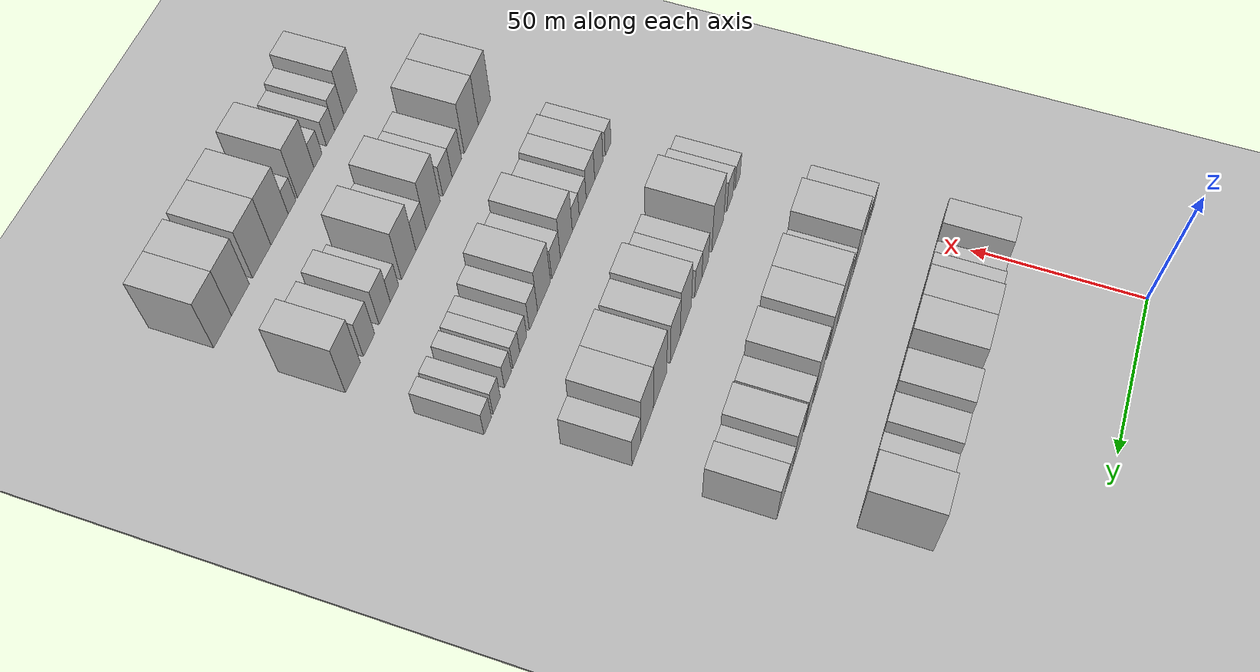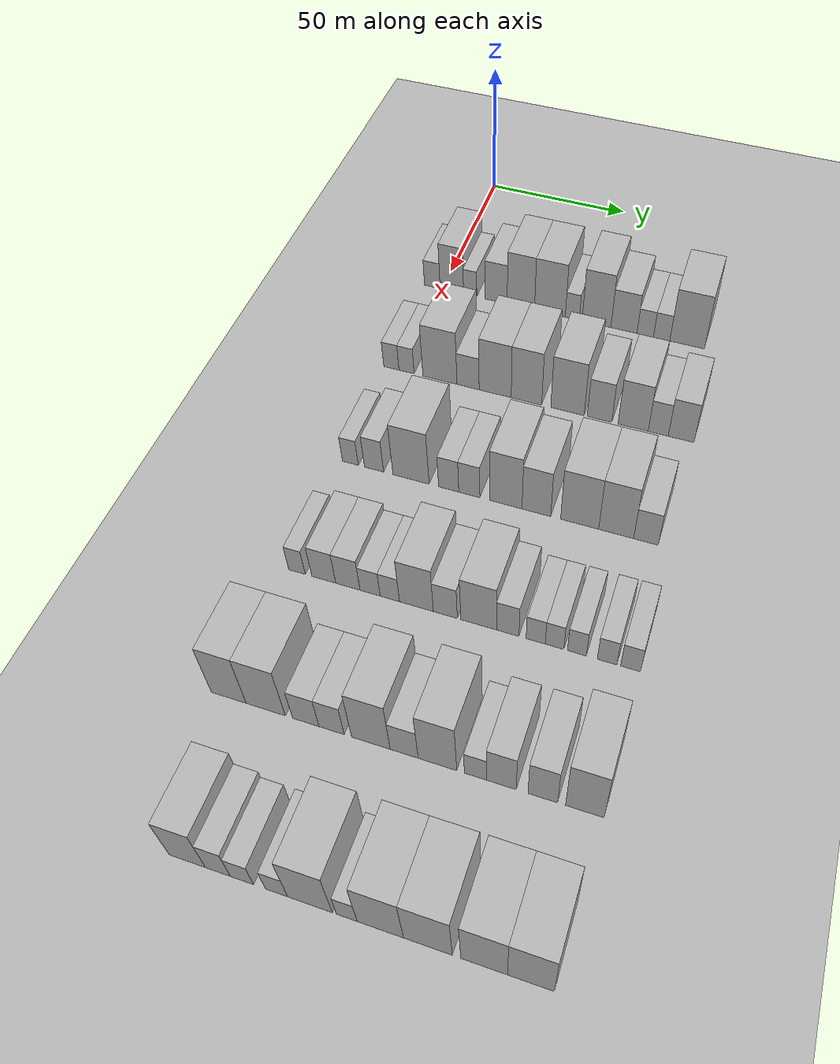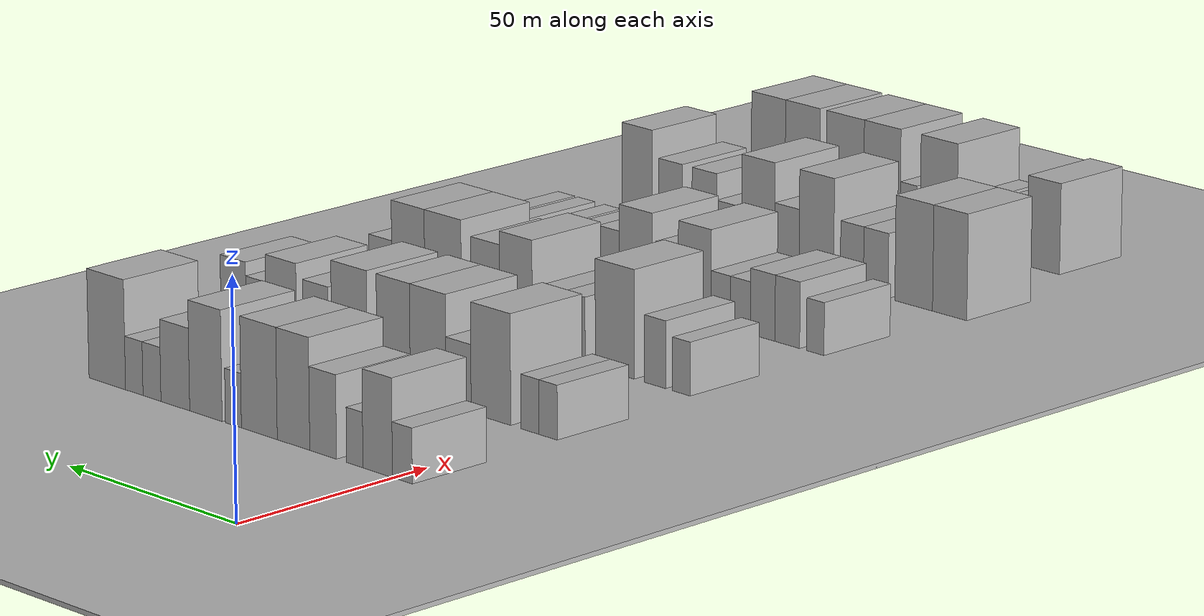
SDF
<sdf version="1.6">
 <world name="default">
  <include><name>ground_plane_1</name><uri>model://HANNAS_ground_plane</uri></include>
  <include>
   <name>ground_plane_2</name>
   <uri>model://HANNAS_ground_plane</uri>
   <pose>100 0 0  0 0 0</pose>
  </include>
  <model name="building_70">
   <static>1</static>
   <pose>50.0000 -3.5770 0 0.000000 0.000000 0.000000</pose>
   <link name="link">
    <pose>0 0 6.00 0 0 0</pose>
    <collision name="collision"><geometry><box><size>20.0000 5.7784 12.0000</size></box></geometry></collision>
    <visual name="visual">
     <cast_shadows>0</cast_shadows>
     <geometry><box><size>20.0000 5.7784 12.0000</size></box></geometry>
     <material>
      <script>
       <uri>model://HANNAS_wall/materials/scripts</uri>
       <uri>model://HANNAS_wall/materials/textures</uri>
       <name>vrc/HANNAS_wall</name>
      </script>
     </material>
    </visual>
   </link>
  </model>
  <model name="building_71">
   <static>1</static>
   <pose>50.0000 3.6200 0 0.000000 0.000000 0.000000</pose>
   <link name="link">
    <pose>0 0 10.50 0 0 0</pose>
    <collision name="collision"><geometry><box><size>20.0000 8.6156 21.0000</size></box></geometry></collision>
    <visual name="visual">
     <cast_shadows>0</cast_shadows>
     <geometry><box><size>20.0000 8.6156 21.0000</size></box></geometry>
     <material>
      <script>
       <uri>model://HANNAS_wall/materials/scripts</uri>
       <uri>model://HANNAS_wall/materials/textures</uri>
       <name>vrc/HANNAS_wall</name>
      </script>
     </material>
    </visual>
   </link>
  </model>
  <model name="building_72">
   <static>1</static>
   <pose>50.0000 10.3360 0 0.000000 0.000000 0.000000</pose>
   <link name="link">
    <pose>0 0 6.00 0 0 0</pose>
    <collision name="collision"><geometry><box><size>20.0000 4.8165 12.0000</size></box></geometry></collision>
    <visual name="visual">
     <cast_shadows>0</cast_shadows>
     <geometry><box><size>20.0000 4.8165 12.0000</size></box></geometry>
     <material>
      <script>
       <uri>model://HANNAS_wall/materials/scripts</uri>
       <uri>model://HANNAS_wall/materials/textures</uri>
       <name>vrc/HANNAS_wall</name>
      </script>
     </material>
    </visual>
   </link>
  </model>
  <model name="building_73">
   <static>1</static>
   <pose>50.0000 19.7261 0 0.000000 0.000000 0.000000</pose>
   <link name="link">
    <pose>0 0 9.00 0 0 0</pose>
    <collision name="collision"><geometry><box><size>20.0000 7.9636 18.0000</size></box></geometry></collision>
    <visual name="visual">
     <cast_shadows>0</cast_shadows>
     <geometry><box><size>20.0000 7.9636 18.0000</size></box></geometry>
     <material>
      <script>
       <uri>model://HANNAS_wall/materials/scripts</uri>
       <uri>model://HANNAS_wall/materials/textures</uri>
       <name>vrc/HANNAS_wall</name>
      </script>
     </material>
    </visual>
   </link>
  </model>
  <model name="building_74">
   <static>1</static>
   <pose>50.0000 28.5896 0 0.000000 0.000000 0.000000</pose>
   <link name="link">
    <pose>0 0 12.00 0 0 0</pose>
    <collision name="collision"><geometry><box><size>20.0000 9.7633 24.0000</size></box></geometry></collision>
    <visual name="visual">
     <cast_shadows>0</cast_shadows>
     <geometry><box><size>20.0000 9.7633 24.0000</size></box></geometry>
     <material>
      <script>
       <uri>model://HANNAS_wall/materials/scripts</uri>
       <uri>model://HANNAS_wall/materials/textures</uri>
       <name>vrc/HANNAS_wall</name>
      </script>
     </material>
    </visual>
   </link>
  </model>
  <model name="building_75">
   <static>1</static>
   <pose>50.0000 38.9172 0 0.000000 0.000000 0.000000</pose>
   <link name="link">
    <pose>0 0 12.00 0 0 0</pose>
    <collision name="collision"><geometry><box><size>20.0000 10.8919 24.0000</size></box></geometry></collision>
    <visual name="visual">
     <cast_shadows>0</cast_shadows>
     <geometry><box><size>20.0000 10.8919 24.0000</size></box></geometry>
     <material>
      <script>
       <uri>model://HANNAS_wall/materials/scripts</uri>
       <uri>model://HANNAS_wall/materials/textures</uri>
       <name>vrc/HANNAS_wall</name>
      </script>
     </material>
    </visual>
   </link>
  </model>
  <model name="building_76">
   <static>1</static>
   <pose>50.0000 46.8128 0 0.000000 0.000000 0.000000</pose>
   <link name="link">
    <pose>0 0 6.00 0 0 0</pose>
    <collision name="collision"><geometry><box><size>20.0000 4.8993 12.0000</size></box></geometry></collision>
    <visual name="visual">
     <cast_shadows>0</cast_shadows>
     <geometry><box><size>20.0000 4.8993 12.0000</size></box></geometry>
     <material>
      <script>
       <uri>model://HANNAS_wall/materials/scripts</uri>
       <uri>model://HANNAS_wall/materials/textures</uri>
       <name>vrc/HANNAS_wall</name>
      </script>
     </material>
    </visual>
   </link>
  </model>
  <model name="building_77">
   <static>1</static>
   <pose>50.0000 55.2715 0 0.000000 0.000000 0.000000</pose>
   <link name="link">
    <pose>0 0 12.00 0 0 0</pose>
    <collision name="collision"><geometry><box><size>20.0000 10.0181 24.0000</size></box></geometry></collision>
    <visual name="visual">
     <cast_shadows>0</cast_shadows>
     <geometry><box><size>20.0000 10.0181 24.0000</size></box></geometry>
     <material>
      <script>
       <uri>model://HANNAS_wall/materials/scripts</uri>
       <uri>model://HANNAS_wall/materials/textures</uri>
       <name>vrc/HANNAS_wall</name>
      </script>
     </material>
    </visual>
   </link>
  </model>
  <model name="building_78">
   <static>1</static>
   <pose>50.0000 64.7624 0 0.000000 0.000000 0.000000</pose>
   <link name="link">
    <pose>0 0 9.00 0 0 0</pose>
    <collision name="collision"><geometry><box><size>20.0000 8.9637 18.0000</size></box></geometry></collision>
    <visual name="visual">
     <cast_shadows>0</cast_shadows>
     <geometry><box><size>20.0000 8.9637 18.0000</size></box></geometry>
     <material>
      <script>
       <uri>model://HANNAS_wall/materials/scripts</uri>
       <uri>model://HANNAS_wall/materials/textures</uri>
       <name>vrc/HANNAS_wall</name>
      </script>
     </material>
    </visual>
   </link>
  </model>
  <model name="building_79">
   <static>1</static>
   <pose>50.0000 72.0623 0 0.000000 0.000000 0.000000</pose>
   <link name="link">
    <pose>0 0 6.00 0 0 0</pose>
    <collision name="collision"><geometry><box><size>20.0000 5.6362 12.0000</size></box></geometry></collision>
    <visual name="visual">
     <cast_shadows>0</cast_shadows>
     <geometry><box><size>20.0000 5.6362 12.0000</size></box></geometry>
     <material>
      <script>
       <uri>model://HANNAS_wall/materials/scripts</uri>
       <uri>model://HANNAS_wall/materials/textures</uri>
       <name>vrc/HANNAS_wall</name>
      </script>
     </material>
    </visual>
   </link>
  </model>
  <model name="building_80">
   <static>1</static>
   <pose>50.0000 77.6364 0 0.000000 0.000000 0.000000</pose>
   <link name="link">
    <pose>0 0 6.00 0 0 0</pose>
    <collision name="collision"><geometry><box><size>20.0000 5.5121 12.0000</size></box></geometry></collision>
    <visual name="visual">
     <cast_shadows>0</cast_shadows>
     <geometry><box><size>20.0000 5.5121 12.0000</size></box></geometry>
     <material>
      <script>
       <uri>model://HANNAS_wall/materials/scripts</uri>
       <uri>model://HANNAS_wall/materials/textures</uri>
       <name>vrc/HANNAS_wall</name>
      </script>
     </material>
    </visual>
   </link>
  </model>
  <model name="building_81">
   <static>1</static>
   <pose>50.0000 86.2128 0 0.000000 0.000000 0.000000</pose>
   <link name="link">
    <pose>0 0 12.00 0 0 0</pose>
    <collision name="collision"><geometry><box><size>20.0000 11.6407 24.0000</size></box></geometry></collision>
    <visual name="visual">
     <cast_shadows>0</cast_shadows>
     <geometry><box><size>20.0000 11.6407 24.0000</size></box></geometry>
     <material>
      <script>
       <uri>model://HANNAS_wall/materials/scripts</uri>
       <uri>model://HANNAS_wall/materials/textures</uri>
       <name>vrc/HANNAS_wall</name>
      </script>
     </material>
    </visual>
   </link>
  </model>
  <model name="building_211">
   <static>1</static>
   <pose>90.0000 -3.1458 0 0.000000 0.000000 0.000000</pose>
   <link name="link">
    <pose>0 0 6.00 0 0 0</pose>
    <collision name="collision"><geometry><box><size>20.0000 5.2793 12.0000</size></box></geometry></collision>
    <visual name="visual">
     <cast_shadows>0</cast_shadows>
     <geometry><box><size>20.0000 5.2793 12.0000</size></box></geometry>
     <material>
      <script>
       <uri>model://HANNAS_wall/materials/scripts</uri>
       <uri>model://HANNAS_wall/materials/textures</uri>
       <name>vrc/HANNAS_wall</name>
      </script>
     </material>
    </visual>
   </link>
  </model>
  <model name="building_212">
   <static>1</static>
   <pose>90.0000 2.1346 0 0.000000 0.000000 0.000000</pose>
   <link name="link">
    <pose>0 0 6.00 0 0 0</pose>
    <collision name="collision"><geometry><box><size>20.0000 5.2814 12.0000</size></box></geometry></collision>
    <visual name="visual">
     <cast_shadows>0</cast_shadows>
     <geometry><box><size>20.0000 5.2814 12.0000</size></box></geometry>
     <material>
      <script>
       <uri>model://HANNAS_wall/materials/scripts</uri>
       <uri>model://HANNAS_wall/materials/textures</uri>
       <name>vrc/HANNAS_wall</name>
      </script>
     </material>
    </visual>
   </link>
  </model>
  <model name="building_213">
   <static>1</static>
   <pose>90.0000 13.6112 0 0.000000 0.000000 0.000000</pose>
   <link name="link">
    <pose>0 0 12.00 0 0 0</pose>
    <collision name="collision"><geometry><box><size>20.0000 11.6719 24.0000</size></box></geometry></collision>
    <visual name="visual">
     <cast_shadows>0</cast_shadows>
     <geometry><box><size>20.0000 11.6719 24.0000</size></box></geometry>
     <material>
      <script>
       <uri>model://HANNAS_wall/materials/scripts</uri>
       <uri>model://HANNAS_wall/materials/textures</uri>
       <name>vrc/HANNAS_wall</name>
      </script>
     </material>
    </visual>
   </link>
  </model>
  <model name="building_214">
   <static>1</static>
   <pose>90.0000 23.1948 0 0.000000 0.000000 0.000000</pose>
   <link name="link">
    <pose>0 0 7.50 0 0 0</pose>
    <collision name="collision"><geometry><box><size>20.0000 7.4953 15.0000</size></box></geometry></collision>
    <visual name="visual">
     <cast_shadows>0</cast_shadows>
     <geometry><box><size>20.0000 7.4953 15.0000</size></box></geometry>
     <material>
      <script>
       <uri>model://HANNAS_wall/materials/scripts</uri>
       <uri>model://HANNAS_wall/materials/textures</uri>
       <name>vrc/HANNAS_wall</name>
      </script>
     </material>
    </visual>
   </link>
  </model>
  <model name="building_215">
   <static>1</static>
   <pose>90.0000 32.3058 0 0.000000 0.000000 0.000000</pose>
   <link name="link">
    <pose>0 0 12.00 0 0 0</pose>
    <collision name="collision"><geometry><box><size>20.0000 10.7266 24.0000</size></box></geometry></collision>
    <visual name="visual">
     <cast_shadows>0</cast_shadows>
     <geometry><box><size>20.0000 10.7266 24.0000</size></box></geometry>
     <material>
      <script>
       <uri>model://HANNAS_wall/materials/scripts</uri>
       <uri>model://HANNAS_wall/materials/textures</uri>
       <name>vrc/HANNAS_wall</name>
      </script>
     </material>
    </visual>
   </link>
  </model>
  <model name="building_216">
   <static>1</static>
   <pose>90.0000 42.7172 0 0.000000 0.000000 0.000000</pose>
   <link name="link">
    <pose>0 0 12.00 0 0 0</pose>
    <collision name="collision"><geometry><box><size>20.0000 10.0962 24.0000</size></box></geometry></collision>
    <visual name="visual">
     <cast_shadows>0</cast_shadows>
     <geometry><box><size>20.0000 10.0962 24.0000</size></box></geometry>
     <material>
      <script>
       <uri>model://HANNAS_wall/materials/scripts</uri>
       <uri>model://HANNAS_wall/materials/textures</uri>
       <name>vrc/HANNAS_wall</name>
      </script>
     </material>
    </visual>
   </link>
  </model>
  <model name="building_217">
   <static>1</static>
   <pose>90.0000 56.2069 0 0.000000 0.000000 0.000000</pose>
   <link name="link">
    <pose>0 0 12.00 0 0 0</pose>
    <collision name="collision"><geometry><box><size>20.0000 10.8832 24.0000</size></box></geometry></collision>
    <visual name="visual">
     <cast_shadows>0</cast_shadows>
     <geometry><box><size>20.0000 10.8832 24.0000</size></box></geometry>
     <material>
      <script>
       <uri>model://HANNAS_wall/materials/scripts</uri>
       <uri>model://HANNAS_wall/materials/textures</uri>
       <name>vrc/HANNAS_wall</name>
      </script>
     </material>
    </visual>
   </link>
  </model>
  <model name="building_218">
   <static>1</static>
   <pose>90.0000 66.6106 0 0.000000 0.000000 0.000000</pose>
   <link name="link">
    <pose>0 0 9.00 0 0 0</pose>
    <collision name="collision"><geometry><box><size>20.0000 7.9242 18.0000</size></box></geometry></collision>
    <visual name="visual">
     <cast_shadows>0</cast_shadows>
     <geometry><box><size>20.0000 7.9242 18.0000</size></box></geometry>
     <material>
      <script>
       <uri>model://HANNAS_wall/materials/scripts</uri>
       <uri>model://HANNAS_wall/materials/textures</uri>
       <name>vrc/HANNAS_wall</name>
      </script>
     </material>
    </visual>
   </link>
  </model>
  <model name="building_219">
   <static>1</static>
   <pose>90.0000 77.3674 0 0.000000 0.000000 0.000000</pose>
   <link name="link">
    <pose>0 0 10.50 0 0 0</pose>
    <collision name="collision"><geometry><box><size>20.0000 9.5893 21.0000</size></box></geometry></collision>
    <visual name="visual">
     <cast_shadows>0</cast_shadows>
     <geometry><box><size>20.0000 9.5893 21.0000</size></box></geometry>
     <material>
      <script>
       <uri>model://HANNAS_wall/materials/scripts</uri>
       <uri>model://HANNAS_wall/materials/textures</uri>
       <name>vrc/HANNAS_wall</name>
      </script>
     </material>
    </visual>
   </link>
  </model>
  <model name="building_220">
   <static>1</static>
   <pose>90.0000 85.3149 0 0.000000 0.000000 0.000000</pose>
   <link name="link">
    <pose>0 0 7.50 0 0 0</pose>
    <collision name="collision"><geometry><box><size>20.0000 6.3057 15.0000</size></box></geometry></collision>
    <visual name="visual">
     <cast_shadows>0</cast_shadows>
     <geometry><box><size>20.0000 6.3057 15.0000</size></box></geometry>
     <material>
      <script>
       <uri>model://HANNAS_wall/materials/scripts</uri>
       <uri>model://HANNAS_wall/materials/textures</uri>
       <name>vrc/HANNAS_wall</name>
      </script>
     </material>
    </visual>
   </link>
  </model>
  <model name="building_221">
   <static>1</static>
   <pose>90.0000 92.4992 0 0.000000 0.000000 0.000000</pose>
   <link name="link">
    <pose>0 0 9.00 0 0 0</pose>
    <collision name="collision"><geometry><box><size>20.0000 8.0629 18.0000</size></box></geometry></collision>
    <visual name="visual">
     <cast_shadows>0</cast_shadows>
     <geometry><box><size>20.0000 8.0629 18.0000</size></box></geometry>
     <material>
      <script>
       <uri>model://HANNAS_wall/materials/scripts</uri>
       <uri>model://HANNAS_wall/materials/textures</uri>
       <name>vrc/HANNAS_wall</name>
      </script>
     </material>
    </visual>
   </link>
  </model>
  <model name="building_348">
   <static>1</static>
   <pose>130.0000 -0.7527 0 0.000000 0.000000 0.000000</pose>
   <link name="link">
    <pose>0 0 6.00 0 0 0</pose>
    <collision name="collision"><geometry><box><size>20.0000 5.1723 12.0000</size></box></geometry></collision>
    <visual name="visual">
     <cast_shadows>0</cast_shadows>
     <geometry><box><size>20.0000 5.1723 12.0000</size></box></geometry>
     <material>
      <script>
       <uri>model://HANNAS_wall/materials/scripts</uri>
       <uri>model://HANNAS_wall/materials/textures</uri>
       <name>vrc/HANNAS_wall</name>
      </script>
     </material>
    </visual>
   </link>
  </model>
  <model name="building_349">
   <static>1</static>
   <pose>130.0000 6.9333 0 0.000000 0.000000 0.000000</pose>
   <link name="link">
    <pose>0 0 7.50 0 0 0</pose>
    <collision name="collision"><geometry><box><size>20.0000 6.1996 15.0000</size></box></geometry></collision>
    <visual name="visual">
     <cast_shadows>0</cast_shadows>
     <geometry><box><size>20.0000 6.1996 15.0000</size></box></geometry>
     <material>
      <script>
       <uri>model://HANNAS_wall/materials/scripts</uri>
       <uri>model://HANNAS_wall/materials/textures</uri>
       <name>vrc/HANNAS_wall</name>
      </script>
     </material>
    </visual>
   </link>
  </model>
  <model name="building_350">
   <static>1</static>
   <pose>130.0000 18.8110 0 0.000000 0.000000 0.000000</pose>
   <link name="link">
    <pose>0 0 12.00 0 0 0</pose>
    <collision name="collision"><geometry><box><size>20.0000 11.5559 24.0000</size></box></geometry></collision>
    <visual name="visual">
     <cast_shadows>0</cast_shadows>
     <geometry><box><size>20.0000 11.5559 24.0000</size></box></geometry>
     <material>
      <script>
       <uri>model://HANNAS_wall/materials/scripts</uri>
       <uri>model://HANNAS_wall/materials/textures</uri>
       <name>vrc/HANNAS_wall</name>
      </script>
     </material>
    </visual>
   </link>
  </model>
  <model name="building_351">
   <static>1</static>
   <pose>130.0000 30.7552 0 0.000000 0.000000 0.000000</pose>
   <link name="link">
    <pose>0 0 7.50 0 0 0</pose>
    <collision name="collision"><geometry><box><size>20.0000 6.3324 15.0000</size></box></geometry></collision>
    <visual name="visual">
     <cast_shadows>0</cast_shadows>
     <geometry><box><size>20.0000 6.3324 15.0000</size></box></geometry>
     <material>
      <script>
       <uri>model://HANNAS_wall/materials/scripts</uri>
       <uri>model://HANNAS_wall/materials/textures</uri>
       <name>vrc/HANNAS_wall</name>
      </script>
     </material>
    </visual>
   </link>
  </model>
  <model name="building_352">
   <static>1</static>
   <pose>130.0000 37.2245 0 0.000000 0.000000 0.000000</pose>
   <link name="link">
    <pose>0 0 7.50 0 0 0</pose>
    <collision name="collision"><geometry><box><size>20.0000 6.6062 15.0000</size></box></geometry></collision>
    <visual name="visual">
     <cast_shadows>0</cast_shadows>
     <geometry><box><size>20.0000 6.6062 15.0000</size></box></geometry>
     <material>
      <script>
       <uri>model://HANNAS_wall/materials/scripts</uri>
       <uri>model://HANNAS_wall/materials/textures</uri>
       <name>vrc/HANNAS_wall</name>
      </script>
     </material>
    </visual>
   </link>
  </model>
  <model name="building_353">
   <static>1</static>
   <pose>130.0000 48.5218 0 0.000000 0.000000 0.000000</pose>
   <link name="link">
    <pose>0 0 12.00 0 0 0</pose>
    <collision name="collision"><geometry><box><size>20.0000 9.9884 24.0000</size></box></geometry></collision>
    <visual name="visual">
     <cast_shadows>0</cast_shadows>
     <geometry><box><size>20.0000 9.9884 24.0000</size></box></geometry>
     <material>
      <script>
       <uri>model://HANNAS_wall/materials/scripts</uri>
       <uri>model://HANNAS_wall/materials/textures</uri>
       <name>vrc/HANNAS_wall</name>
      </script>
     </material>
    </visual>
   </link>
  </model>
  <model name="building_354">
   <static>1</static>
   <pose>130.0000 57.8854 0 0.000000 0.000000 0.000000</pose>
   <link name="link">
    <pose>0 0 10.50 0 0 0</pose>
    <collision name="collision"><geometry><box><size>20.0000 8.7388 21.0000</size></box></geometry></collision>
    <visual name="visual">
     <cast_shadows>0</cast_shadows>
     <geometry><box><size>20.0000 8.7388 21.0000</size></box></geometry>
     <material>
      <script>
       <uri>model://HANNAS_wall/materials/scripts</uri>
       <uri>model://HANNAS_wall/materials/textures</uri>
       <name>vrc/HANNAS_wall</name>
      </script>
     </material>
    </visual>
   </link>
  </model>
  <model name="building_355">
   <static>1</static>
   <pose>130.0000 70.9532 0 0.000000 0.000000 0.000000</pose>
   <link name="link">
    <pose>0 0 12.00 0 0 0</pose>
    <collision name="collision"><geometry><box><size>20.0000 11.3968 24.0000</size></box></geometry></collision>
    <visual name="visual">
     <cast_shadows>0</cast_shadows>
     <geometry><box><size>20.0000 11.3968 24.0000</size></box></geometry>
     <material>
      <script>
       <uri>model://HANNAS_wall/materials/scripts</uri>
       <uri>model://HANNAS_wall/materials/textures</uri>
       <name>vrc/HANNAS_wall</name>
      </script>
     </material>
    </visual>
   </link>
  </model>
  <model name="building_356">
   <static>1</static>
   <pose>130.0000 81.8253 0 0.000000 0.000000 0.000000</pose>
   <link name="link">
    <pose>0 0 12.00 0 0 0</pose>
    <collision name="collision"><geometry><box><size>20.0000 10.3476 24.0000</size></box></geometry></collision>
    <visual name="visual">
     <cast_shadows>0</cast_shadows>
     <geometry><box><size>20.0000 10.3476 24.0000</size></box></geometry>
     <material>
      <script>
       <uri>model://HANNAS_wall/materials/scripts</uri>
       <uri>model://HANNAS_wall/materials/textures</uri>
       <name>vrc/HANNAS_wall</name>
      </script>
     </material>
    </visual>
   </link>
  </model>
  <model name="building_357">
   <static>1</static>
   <pose>130.0000 90.5860 0 0.000000 0.000000 0.000000</pose>
   <link name="link">
    <pose>0 0 7.50 0 0 0</pose>
    <collision name="collision"><geometry><box><size>20.0000 7.1738 15.0000</size></box></geometry></collision>
    <visual name="visual">
     <cast_shadows>0</cast_shadows>
     <geometry><box><size>20.0000 7.1738 15.0000</size></box></geometry>
     <material>
      <script>
       <uri>model://HANNAS_wall/materials/scripts</uri>
       <uri>model://HANNAS_wall/materials/textures</uri>
       <name>vrc/HANNAS_wall</name>
      </script>
     </material>
    </visual>
   </link>
  </model>
  <model name="building_476">
   <static>1</static>
   <pose>170.0000 -0.1329 0 0.000000 0.000000 0.000000</pose>
   <link name="link">
    <pose>0 0 6.00 0 0 0</pose>
    <collision name="collision"><geometry><box><size>20.0000 5.0625 12.0000</size></box></geometry></collision>
    <visual name="visual">
     <cast_shadows>0</cast_shadows>
     <geometry><box><size>20.0000 5.0625 12.0000</size></box></geometry>
     <material>
      <script>
       <uri>model://HANNAS_wall/materials/scripts</uri>
       <uri>model://HANNAS_wall/materials/textures</uri>
       <name>vrc/HANNAS_wall</name>
      </script>
     </material>
    </visual>
   </link>
  </model>
  <model name="building_477">
   <static>1</static>
   <pose>170.0000 8.0151 0 0.000000 0.000000 0.000000</pose>
   <link name="link">
    <pose>0 0 7.50 0 0 0</pose>
    <collision name="collision"><geometry><box><size>20.0000 7.2336 15.0000</size></box></geometry></collision>
    <visual name="visual">
     <cast_shadows>0</cast_shadows>
     <geometry><box><size>20.0000 7.2336 15.0000</size></box></geometry>
     <material>
      <script>
       <uri>model://HANNAS_wall/materials/scripts</uri>
       <uri>model://HANNAS_wall/materials/textures</uri>
       <name>vrc/HANNAS_wall</name>
      </script>
     </material>
    </visual>
   </link>
  </model>
  <model name="building_478">
   <static>1</static>
   <pose>170.0000 15.2782 0 0.000000 0.000000 0.000000</pose>
   <link name="link">
    <pose>0 0 7.50 0 0 0</pose>
    <collision name="collision"><geometry><box><size>20.0000 7.2926 15.0000</size></box></geometry></collision>
    <visual name="visual">
     <cast_shadows>0</cast_shadows>
     <geometry><box><size>20.0000 7.2926 15.0000</size></box></geometry>
     <material>
      <script>
       <uri>model://HANNAS_wall/materials/scripts</uri>
       <uri>model://HANNAS_wall/materials/textures</uri>
       <name>vrc/HANNAS_wall</name>
      </script>
     </material>
    </visual>
   </link>
  </model>
  <model name="building_479">
   <static>1</static>
   <pose>170.0000 21.9084 0 0.000000 0.000000 0.000000</pose>
   <link name="link">
    <pose>0 0 6.00 0 0 0</pose>
    <collision name="collision"><geometry><box><size>20.0000 5.9677 12.0000</size></box></geometry></collision>
    <visual name="visual">
     <cast_shadows>0</cast_shadows>
     <geometry><box><size>20.0000 5.9677 12.0000</size></box></geometry>
     <material>
      <script>
       <uri>model://HANNAS_wall/materials/scripts</uri>
       <uri>model://HANNAS_wall/materials/textures</uri>
       <name>vrc/HANNAS_wall</name>
      </script>
     </material>
    </visual>
   </link>
  </model>
  <model name="building_480">
   <static>1</static>
   <pose>170.0000 27.7446 0 0.000000 0.000000 0.000000</pose>
   <link name="link">
    <pose>0 0 6.00 0 0 0</pose>
    <collision name="collision"><geometry><box><size>20.0000 5.7048 12.0000</size></box></geometry></collision>
    <visual name="visual">
     <cast_shadows>0</cast_shadows>
     <geometry><box><size>20.0000 5.7048 12.0000</size></box></geometry>
     <material>
      <script>
       <uri>model://HANNAS_wall/materials/scripts</uri>
       <uri>model://HANNAS_wall/materials/textures</uri>
       <name>vrc/HANNAS_wall</name>
      </script>
     </material>
    </visual>
   </link>
  </model>
  <model name="building_481">
   <static>1</static>
   <pose>170.0000 35.5423 0 0.000000 0.000000 0.000000</pose>
   <link name="link">
    <pose>0 0 10.50 0 0 0</pose>
    <collision name="collision"><geometry><box><size>20.0000 9.8907 21.0000</size></box></geometry></collision>
    <visual name="visual">
     <cast_shadows>0</cast_shadows>
     <geometry><box><size>20.0000 9.8907 21.0000</size></box></geometry>
     <material>
      <script>
       <uri>model://HANNAS_wall/materials/scripts</uri>
       <uri>model://HANNAS_wall/materials/textures</uri>
       <name>vrc/HANNAS_wall</name>
      </script>
     </material>
    </visual>
   </link>
  </model>
  <model name="building_482">
   <static>1</static>
   <pose>170.0000 43.9485 0 0.000000 0.000000 0.000000</pose>
   <link name="link">
    <pose>0 0 7.50 0 0 0</pose>
    <collision name="collision"><geometry><box><size>20.0000 6.9216 15.0000</size></box></geometry></collision>
    <visual name="visual">
     <cast_shadows>0</cast_shadows>
     <geometry><box><size>20.0000 6.9216 15.0000</size></box></geometry>
     <material>
      <script>
       <uri>model://HANNAS_wall/materials/scripts</uri>
       <uri>model://HANNAS_wall/materials/textures</uri>
       <name>vrc/HANNAS_wall</name>
      </script>
     </material>
    </visual>
   </link>
  </model>
  <model name="building_483">
   <static>1</static>
   <pose>170.0000 53.4901 0 0.000000 0.000000 0.000000</pose>
   <link name="link">
    <pose>0 0 10.50 0 0 0</pose>
    <collision name="collision"><geometry><box><size>20.0000 10.1616 21.0000</size></box></geometry></collision>
    <visual name="visual">
     <cast_shadows>0</cast_shadows>
     <geometry><box><size>20.0000 10.1616 21.0000</size></box></geometry>
     <material>
      <script>
       <uri>model://HANNAS_wall/materials/scripts</uri>
       <uri>model://HANNAS_wall/materials/textures</uri>
       <name>vrc/HANNAS_wall</name>
      </script>
     </material>
    </visual>
   </link>
  </model>
  <model name="building_484">
   <static>1</static>
   <pose>170.0000 61.7375 0 0.000000 0.000000 0.000000</pose>
   <link name="link">
    <pose>0 0 7.50 0 0 0</pose>
    <collision name="collision"><geometry><box><size>20.0000 6.3331 15.0000</size></box></geometry></collision>
    <visual name="visual">
     <cast_shadows>0</cast_shadows>
     <geometry><box><size>20.0000 6.3331 15.0000</size></box></geometry>
     <material>
      <script>
       <uri>model://HANNAS_wall/materials/scripts</uri>
       <uri>model://HANNAS_wall/materials/textures</uri>
       <name>vrc/HANNAS_wall</name>
      </script>
     </material>
    </visual>
   </link>
  </model>
  <model name="building_485">
   <static>1</static>
   <pose>170.0000 69.5751 0 0.000000 0.000000 0.000000</pose>
   <link name="link">
    <pose>0 0 6.00 0 0 0</pose>
    <collision name="collision"><geometry><box><size>20.0000 5.3422 12.0000</size></box></geometry></collision>
    <visual name="visual">
     <cast_shadows>0</cast_shadows>
     <geometry><box><size>20.0000 5.3422 12.0000</size></box></geometry>
     <material>
      <script>
       <uri>model://HANNAS_wall/materials/scripts</uri>
       <uri>model://HANNAS_wall/materials/textures</uri>
       <name>vrc/HANNAS_wall</name>
      </script>
     </material>
    </visual>
   </link>
  </model>
  <model name="building_486">
   <static>1</static>
   <pose>170.0000 74.8259 0 0.000000 0.000000 0.000000</pose>
   <link name="link">
    <pose>0 0 6.00 0 0 0</pose>
    <collision name="collision"><geometry><box><size>20.0000 5.1594 12.0000</size></box></geometry></collision>
    <visual name="visual">
     <cast_shadows>0</cast_shadows>
     <geometry><box><size>20.0000 5.1594 12.0000</size></box></geometry>
     <material>
      <script>
       <uri>model://HANNAS_wall/materials/scripts</uri>
       <uri>model://HANNAS_wall/materials/textures</uri>
       <name>vrc/HANNAS_wall</name>
      </script>
     </material>
    </visual>
   </link>
  </model>
  <model name="building_487">
   <static>1</static>
   <pose>170.0000 80.9944 0 0.000000 0.000000 0.000000</pose>
   <link name="link">
    <pose>0 0 6.00 0 0 0</pose>
    <collision name="collision"><geometry><box><size>20.0000 5.1776 12.0000</size></box></geometry></collision>
    <visual name="visual">
     <cast_shadows>0</cast_shadows>
     <geometry><box><size>20.0000 5.1776 12.0000</size></box></geometry>
     <material>
      <script>
       <uri>model://HANNAS_wall/materials/scripts</uri>
       <uri>model://HANNAS_wall/materials/textures</uri>
       <name>vrc/HANNAS_wall</name>
      </script>
     </material>
    </visual>
   </link>
  </model>
  <model name="building_488">
   <static>1</static>
   <pose>170.0000 89.2489 0 0.000000 0.000000 0.000000</pose>
   <link name="link">
    <pose>0 0 6.00 0 0 0</pose>
    <collision name="collision"><geometry><box><size>20.0000 5.3314 12.0000</size></box></geometry></collision>
    <visual name="visual">
     <cast_shadows>0</cast_shadows>
     <geometry><box><size>20.0000 5.3314 12.0000</size></box></geometry>
     <material>
      <script>
       <uri>model://HANNAS_wall/materials/scripts</uri>
       <uri>model://HANNAS_wall/materials/textures</uri>
       <name>vrc/HANNAS_wall</name>
      </script>
     </material>
    </visual>
   </link>
  </model>
  <model name="building_489">
   <static>1</static>
   <pose>170.0000 95.5874 0 0.000000 0.000000 0.000000</pose>
   <link name="link">
    <pose>0 0 6.00 0 0 0</pose>
    <collision name="collision"><geometry><box><size>20.0000 5.3454 12.0000</size></box></geometry></collision>
    <visual name="visual">
     <cast_shadows>0</cast_shadows>
     <geometry><box><size>20.0000 5.3454 12.0000</size></box></geometry>
     <material>
      <script>
       <uri>model://HANNAS_wall/materials/scripts</uri>
       <uri>model://HANNAS_wall/materials/textures</uri>
       <name>vrc/HANNAS_wall</name>
      </script>
     </material>
    </visual>
   </link>
  </model>
  <model name="building_612">
   <static>1</static>
   <pose>210.0000 -1.1387 0 0.000000 0.000000 0.000000</pose>
   <link name="link">
    <pose>0 0 12.00 0 0 0</pose>
    <collision name="collision"><geometry><box><size>20.0000 9.9505 24.0000</size></box></geometry></collision>
    <visual name="visual">
     <cast_shadows>0</cast_shadows>
     <geometry><box><size>20.0000 9.9505 24.0000</size></box></geometry>
     <material>
      <script>
       <uri>model://HANNAS_wall/materials/scripts</uri>
       <uri>model://HANNAS_wall/materials/textures</uri>
       <name>vrc/HANNAS_wall</name>
      </script>
     </material>
    </visual>
   </link>
  </model>
  <model name="building_613">
   <static>1</static>
   <pose>210.0000 9.3597 0 0.000000 0.000000 0.000000</pose>
   <link name="link">
    <pose>0 0 12.00 0 0 0</pose>
    <collision name="collision"><geometry><box><size>20.0000 11.0463 24.0000</size></box></geometry></collision>
    <visual name="visual">
     <cast_shadows>0</cast_shadows>
     <geometry><box><size>20.0000 11.0463 24.0000</size></box></geometry>
     <material>
      <script>
       <uri>model://HANNAS_wall/materials/scripts</uri>
       <uri>model://HANNAS_wall/materials/textures</uri>
       <name>vrc/HANNAS_wall</name>
      </script>
     </material>
    </visual>
   </link>
  </model>
  <model name="building_614">
   <static>1</static>
   <pose>210.0000 20.5527 0 0.000000 0.000000 0.000000</pose>
   <link name="link">
    <pose>0 0 7.50 0 0 0</pose>
    <collision name="collision"><geometry><box><size>20.0000 7.3398 15.0000</size></box></geometry></collision>
    <visual name="visual">
     <cast_shadows>0</cast_shadows>
     <geometry><box><size>20.0000 7.3398 15.0000</size></box></geometry>
     <material>
      <script>
       <uri>model://HANNAS_wall/materials/scripts</uri>
       <uri>model://HANNAS_wall/materials/textures</uri>
       <name>vrc/HANNAS_wall</name>
      </script>
     </material>
    </visual>
   </link>
  </model>
  <model name="building_615">
   <static>1</static>
   <pose>210.0000 27.6691 0 0.000000 0.000000 0.000000</pose>
   <link name="link">
    <pose>0 0 7.50 0 0 0</pose>
    <collision name="collision"><geometry><box><size>20.0000 6.8930 15.0000</size></box></geometry></collision>
    <visual name="visual">
     <cast_shadows>0</cast_shadows>
     <geometry><box><size>20.0000 6.8930 15.0000</size></box></geometry>
     <material>
      <script>
       <uri>model://HANNAS_wall/materials/scripts</uri>
       <uri>model://HANNAS_wall/materials/textures</uri>
       <name>vrc/HANNAS_wall</name>
      </script>
     </material>
    </visual>
   </link>
  </model>
  <model name="building_616">
   <static>1</static>
   <pose>210.0000 38.3332 0 0.000000 0.000000 0.000000</pose>
   <link name="link">
    <pose>0 0 12.00 0 0 0</pose>
    <collision name="collision"><geometry><box><size>20.0000 10.4352 24.0000</size></box></geometry></collision>
    <visual name="visual">
     <cast_shadows>0</cast_shadows>
     <geometry><box><size>20.0000 10.4352 24.0000</size></box></geometry>
     <material>
      <script>
       <uri>model://HANNAS_wall/materials/scripts</uri>
       <uri>model://HANNAS_wall/materials/textures</uri>
       <name>vrc/HANNAS_wall</name>
      </script>
     </material>
    </visual>
   </link>
  </model>
  <model name="building_617">
   <static>1</static>
   <pose>210.0000 47.2823 0 0.000000 0.000000 0.000000</pose>
   <link name="link">
    <pose>0 0 7.50 0 0 0</pose>
    <collision name="collision"><geometry><box><size>20.0000 7.4631 15.0000</size></box></geometry></collision>
    <visual name="visual">
     <cast_shadows>0</cast_shadows>
     <geometry><box><size>20.0000 7.4631 15.0000</size></box></geometry>
     <material>
      <script>
       <uri>model://HANNAS_wall/materials/scripts</uri>
       <uri>model://HANNAS_wall/materials/textures</uri>
       <name>vrc/HANNAS_wall</name>
      </script>
     </material>
    </visual>
   </link>
  </model>
  <model name="building_618">
   <static>1</static>
   <pose>210.0000 56.0892 0 0.000000 0.000000 0.000000</pose>
   <link name="link">
    <pose>0 0 12.00 0 0 0</pose>
    <collision name="collision"><geometry><box><size>20.0000 10.1507 24.0000</size></box></geometry></collision>
    <visual name="visual">
     <cast_shadows>0</cast_shadows>
     <geometry><box><size>20.0000 10.1507 24.0000</size></box></geometry>
     <material>
      <script>
       <uri>model://HANNAS_wall/materials/scripts</uri>
       <uri>model://HANNAS_wall/materials/textures</uri>
       <name>vrc/HANNAS_wall</name>
      </script>
     </material>
    </visual>
   </link>
  </model>
  <model name="building_619">
   <static>1</static>
   <pose>210.0000 66.0295 0 0.000000 0.000000 0.000000</pose>
   <link name="link">
    <pose>0 0 6.00 0 0 0</pose>
    <collision name="collision"><geometry><box><size>20.0000 5.7298 12.0000</size></box></geometry></collision>
    <visual name="visual">
     <cast_shadows>0</cast_shadows>
     <geometry><box><size>20.0000 5.7298 12.0000</size></box></geometry>
     <material>
      <script>
       <uri>model://HANNAS_wall/materials/scripts</uri>
       <uri>model://HANNAS_wall/materials/textures</uri>
       <name>vrc/HANNAS_wall</name>
      </script>
     </material>
    </visual>
   </link>
  </model>
  <model name="building_620">
   <static>1</static>
   <pose>210.0000 72.7124 0 0.000000 0.000000 0.000000</pose>
   <link name="link">
    <pose>0 0 9.00 0 0 0</pose>
    <collision name="collision"><geometry><box><size>20.0000 7.6359 18.0000</size></box></geometry></collision>
    <visual name="visual">
     <cast_shadows>0</cast_shadows>
     <geometry><box><size>20.0000 7.6359 18.0000</size></box></geometry>
     <material>
      <script>
       <uri>model://HANNAS_wall/materials/scripts</uri>
       <uri>model://HANNAS_wall/materials/textures</uri>
       <name>vrc/HANNAS_wall</name>
      </script>
     </material>
    </visual>
   </link>
  </model>
  <model name="building_621">
   <static>1</static>
   <pose>210.0000 83.2668 0 0.000000 0.000000 0.000000</pose>
   <link name="link">
    <pose>0 0 9.00 0 0 0</pose>
    <collision name="collision"><geometry><box><size>20.0000 7.4729 18.0000</size></box></geometry></collision>
    <visual name="visual">
     <cast_shadows>0</cast_shadows>
     <geometry><box><size>20.0000 7.4729 18.0000</size></box></geometry>
     <material>
      <script>
       <uri>model://HANNAS_wall/materials/scripts</uri>
       <uri>model://HANNAS_wall/materials/textures</uri>
       <name>vrc/HANNAS_wall</name>
      </script>
     </material>
    </visual>
   </link>
  </model>
  <model name="building_622">
   <static>1</static>
   <pose>210.0000 93.8171 0 0.000000 0.000000 0.000000</pose>
   <link name="link">
    <pose>0 0 12.00 0 0 0</pose>
    <collision name="collision"><geometry><box><size>20.0000 9.6276 24.0000</size></box></geometry></collision>
    <visual name="visual">
     <cast_shadows>0</cast_shadows>
     <geometry><box><size>20.0000 9.6276 24.0000</size></box></geometry>
     <material>
      <script>
       <uri>model://HANNAS_wall/materials/scripts</uri>
       <uri>model://HANNAS_wall/materials/textures</uri>
       <name>vrc/HANNAS_wall</name>
      </script>
     </material>
    </visual>
   </link>
  </model>
  <model name="building_754">
   <static>1</static>
   <pose>250.0000 8.3353 0 0.000000 0.000000 0.000000</pose>
   <link name="link">
    <pose>0 0 10.50 0 0 0</pose>
    <collision name="collision"><geometry><box><size>20.0000 9.5266 21.0000</size></box></geometry></collision>
    <visual name="visual">
     <cast_shadows>0</cast_shadows>
     <geometry><box><size>20.0000 9.5266 21.0000</size></box></geometry>
     <material>
      <script>
       <uri>model://HANNAS_wall/materials/scripts</uri>
       <uri>model://HANNAS_wall/materials/textures</uri>
       <name>vrc/HANNAS_wall</name>
      </script>
     </material>
    </visual>
   </link>
  </model>
  <model name="building_755">
   <static>1</static>
   <pose>250.0000 16.3091 0 0.000000 0.000000 0.000000</pose>
   <link name="link">
    <pose>0 0 7.50 0 0 0</pose>
    <collision name="collision"><geometry><box><size>20.0000 6.4209 15.0000</size></box></geometry></collision>
    <visual name="visual">
     <cast_shadows>0</cast_shadows>
     <geometry><box><size>20.0000 6.4209 15.0000</size></box></geometry>
     <material>
      <script>
       <uri>model://HANNAS_wall/materials/scripts</uri>
       <uri>model://HANNAS_wall/materials/textures</uri>
       <name>vrc/HANNAS_wall</name>
      </script>
     </material>
    </visual>
   </link>
  </model>
  <model name="building_756">
   <static>1</static>
   <pose>250.0000 22.4806 0 0.000000 0.000000 0.000000</pose>
   <link name="link">
    <pose>0 0 6.00 0 0 0</pose>
    <collision name="collision"><geometry><box><size>20.0000 5.9222 12.0000</size></box></geometry></collision>
    <visual name="visual">
     <cast_shadows>0</cast_shadows>
     <geometry><box><size>20.0000 5.9222 12.0000</size></box></geometry>
     <material>
      <script>
       <uri>model://HANNAS_wall/materials/scripts</uri>
       <uri>model://HANNAS_wall/materials/textures</uri>
       <name>vrc/HANNAS_wall</name>
      </script>
     </material>
    </visual>
   </link>
  </model>
  <model name="building_757">
   <static>1</static>
   <pose>250.0000 31.2373 0 0.000000 0.000000 0.000000</pose>
   <link name="link">
    <pose>0 0 6.00 0 0 0</pose>
    <collision name="collision"><geometry><box><size>20.0000 5.5912 12.0000</size></box></geometry></collision>
    <visual name="visual">
     <cast_shadows>0</cast_shadows>
     <geometry><box><size>20.0000 5.5912 12.0000</size></box></geometry>
     <material>
      <script>
       <uri>model://HANNAS_wall/materials/scripts</uri>
       <uri>model://HANNAS_wall/materials/textures</uri>
       <name>vrc/HANNAS_wall</name>
      </script>
     </material>
    </visual>
   </link>
  </model>
  <model name="building_758">
   <static>1</static>
   <pose>250.0000 39.5908 0 0.000000 0.000000 0.000000</pose>
   <link name="link">
    <pose>0 0 12.00 0 0 0</pose>
    <collision name="collision"><geometry><box><size>20.0000 11.1158 24.0000</size></box></geometry></collision>
    <visual name="visual">
     <cast_shadows>0</cast_shadows>
     <geometry><box><size>20.0000 11.1158 24.0000</size></box></geometry>
     <material>
      <script>
       <uri>model://HANNAS_wall/materials/scripts</uri>
       <uri>model://HANNAS_wall/materials/textures</uri>
       <name>vrc/HANNAS_wall</name>
      </script>
     </material>
    </visual>
   </link>
  </model>
  <model name="building_759">
   <static>1</static>
   <pose>250.0000 48.6993 0 0.000000 0.000000 0.000000</pose>
   <link name="link">
    <pose>0 0 6.00 0 0 0</pose>
    <collision name="collision"><geometry><box><size>20.0000 5.1012 12.0000</size></box></geometry></collision>
    <visual name="visual">
     <cast_shadows>0</cast_shadows>
     <geometry><box><size>20.0000 5.1012 12.0000</size></box></geometry>
     <material>
      <script>
       <uri>model://HANNAS_wall/materials/scripts</uri>
       <uri>model://HANNAS_wall/materials/textures</uri>
       <name>vrc/HANNAS_wall</name>
      </script>
     </material>
    </visual>
   </link>
  </model>
  <model name="building_760">
   <static>1</static>
   <pose>250.0000 56.8470 0 0.000000 0.000000 0.000000</pose>
   <link name="link">
    <pose>0 0 12.00 0 0 0</pose>
    <collision name="collision"><geometry><box><size>20.0000 11.1942 24.0000</size></box></geometry></collision>
    <visual name="visual">
     <cast_shadows>0</cast_shadows>
     <geometry><box><size>20.0000 11.1942 24.0000</size></box></geometry>
     <material>
      <script>
       <uri>model://HANNAS_wall/materials/scripts</uri>
       <uri>model://HANNAS_wall/materials/textures</uri>
       <name>vrc/HANNAS_wall</name>
      </script>
     </material>
    </visual>
   </link>
  </model>
  <model name="building_761">
   <static>1</static>
   <pose>250.0000 68.2558 0 0.000000 0.000000 0.000000</pose>
   <link name="link">
    <pose>0 0 12.00 0 0 0</pose>
    <collision name="collision"><geometry><box><size>20.0000 11.6233 24.0000</size></box></geometry></collision>
    <visual name="visual">
     <cast_shadows>0</cast_shadows>
     <geometry><box><size>20.0000 11.6233 24.0000</size></box></geometry>
     <material>
      <script>
       <uri>model://HANNAS_wall/materials/scripts</uri>
       <uri>model://HANNAS_wall/materials/textures</uri>
       <name>vrc/HANNAS_wall</name>
      </script>
     </material>
    </visual>
   </link>
  </model>
  <model name="building_762">
   <static>1</static>
   <pose>250.0000 81.4918 0 0.000000 0.000000 0.000000</pose>
   <link name="link">
    <pose>0 0 12.00 0 0 0</pose>
    <collision name="collision"><geometry><box><size>20.0000 10.8488 24.0000</size></box></geometry></collision>
    <visual name="visual">
     <cast_shadows>0</cast_shadows>
     <geometry><box><size>20.0000 10.8488 24.0000</size></box></geometry>
     <material>
      <script>
       <uri>model://HANNAS_wall/materials/scripts</uri>
       <uri>model://HANNAS_wall/materials/textures</uri>
       <name>vrc/HANNAS_wall</name>
      </script>
     </material>
    </visual>
   </link>
  </model>
  <model name="building_763">
   <static>1</static>
   <pose>250.0000 92.2740 0 0.000000 0.000000 0.000000</pose>
   <link name="link">
    <pose>0 0 12.00 0 0 0</pose>
    <collision name="collision"><geometry><box><size>20.0000 10.7155 24.0000</size></box></geometry></collision>
    <visual name="visual">
     <cast_shadows>0</cast_shadows>
     <geometry><box><size>20.0000 10.7155 24.0000</size></box></geometry>
     <material>
      <script>
       <uri>model://HANNAS_wall/materials/scripts</uri>
       <uri>model://HANNAS_wall/materials/textures</uri>
       <name>vrc/HANNAS_wall</name>
      </script>
     </material>
    </visual>
   </link>
  </model>
 </world>
</sdf>
